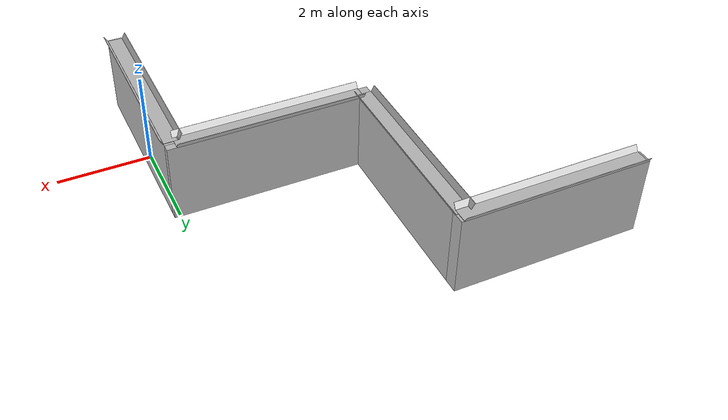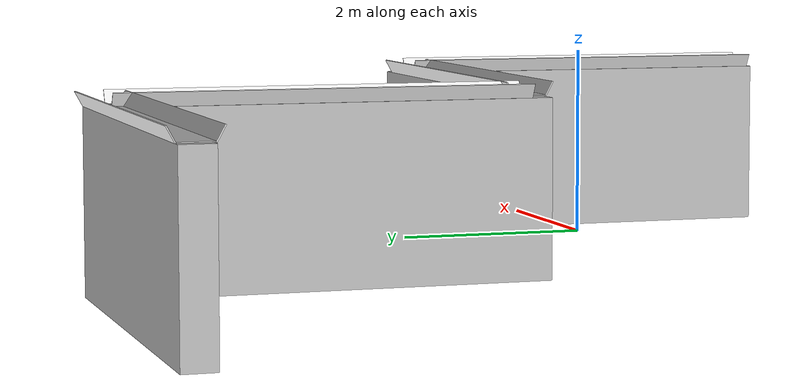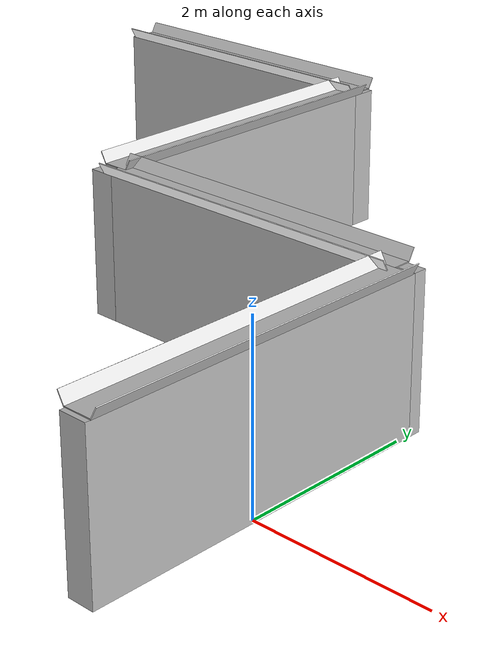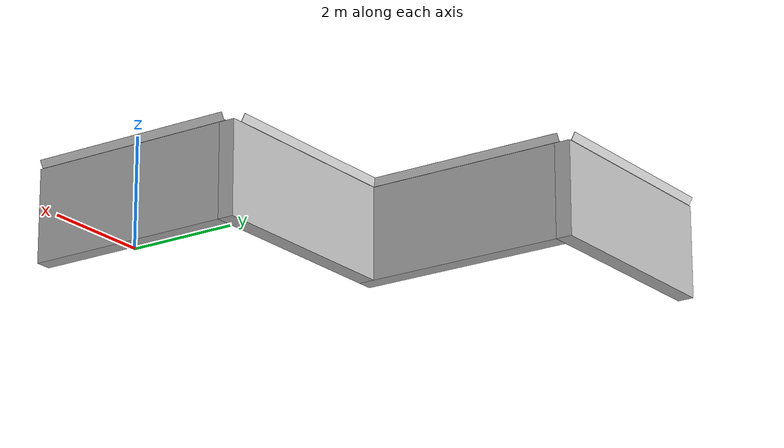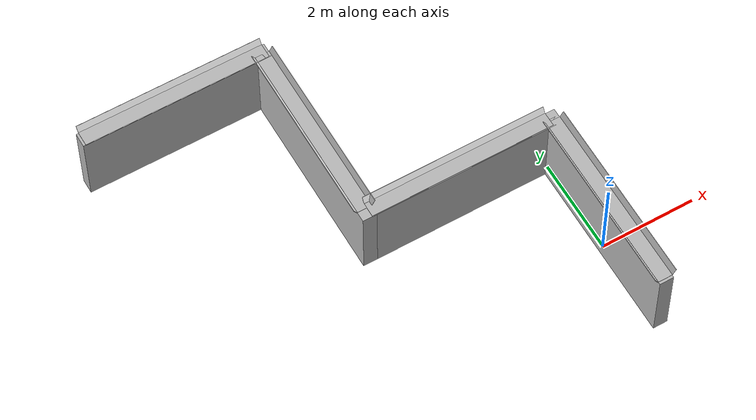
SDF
<?xml version="1.0" ?>
<sdf version="1.5">
  <model name="mbzirc_uav_wall">
    <static>true</static>
    <link name="link1">
	<pose frame=''>0.0 0 0.95 0 0.0 0</pose>
      <collision name="collision">
        <geometry>
          <box>
            <size>0.3 4.0 1.7</size>
          </box>
        </geometry>
      </collision>
      <visual name="visual">
        <cast_shadows>false</cast_shadows>
        <geometry>
          <box>
            <size>0.3 4.0 1.7</size>
          </box>
        </geometry>
        <material>
          <script>
            <uri>model://mbzirc_uav_wall/materials/scripts</uri>
            <uri>model://mbzirc_uav_wall/materials/textures</uri>
            <name>vrc/tennis_net</name>
          </script>
        </material>
      </visual>
    </link>
    <link name="link2">
	<pose frame=''>-1.85 2.0 0.95 0 0.0 1.57079</pose>
      <collision name="collision">
        <geometry>
          <box>
            <size>0.3 4.0 1.7</size>
          </box>
        </geometry>
      </collision>
      <visual name="visual">
        <cast_shadows>false</cast_shadows>
        <geometry>
          <box>
            <size>0.3 4.0 1.7</size>
          </box>
        </geometry>
        <material>
          <script>
            <uri>model://mbzirc_uav_wall/materials/scripts</uri>
            <uri>model://mbzirc_uav_wall/materials/textures</uri>
            <name>vrc/tennis_net</name>
          </script>
        </material>
      </visual>
    </link>
    <link name="link3">
	<pose frame=''>-4.0 3.85 0.95 0 0.0 0.0</pose>
      <collision name="collision">
        <geometry>
          <box>
            <size>0.3 4.0 1.7</size>
          </box>
        </geometry>
      </collision>
      <visual name="visual">
        <cast_shadows>false</cast_shadows>
        <geometry>
          <box>
            <size>0.3 4.0 1.7</size>
          </box>
        </geometry>
        <material>
          <script>
            <uri>model://mbzirc_uav_wall/materials/scripts</uri>
            <uri>model://mbzirc_uav_wall/materials/textures</uri>
            <name>vrc/tennis_net</name>
          </script>
        </material>
      </visual>
    </link>
    <link name="link4">
	<pose frame=''>-5.85 6.0 0.95 0 0.0 1.57079</pose>
      <collision name="collision">
        <geometry>
          <box>
            <size>0.3 4.0 1.7</size>
          </box>
        </geometry>
      </collision>
      <visual name="visual">
        <cast_shadows>false</cast_shadows>
        <geometry>
          <box>
            <size>0.3 4.0 1.7</size>
          </box>
        </geometry>
        <material>
          <script>
            <uri>model://mbzirc_uav_wall/materials/scripts</uri>
            <uri>model://mbzirc_uav_wall/materials/textures</uri>
            <name>vrc/tennis_net</name>
          </script>
        </material>
      </visual>
    </link>

	<include>
      <uri>model://mbzirc_uav_channel_2</uri>
      <pose>-0.15 -2.0 1.76 0 0 0</pose>
      <name>mbzirc_uav_channel_1</name>
    </include>

	<include>
      <uri>model://mbzirc_uav_channel_2</uri>
      <pose>-0.0 1.85 1.76 0 0 1.57079</pose>
      <name>mbzirc_uav_channel_2</name>
    </include>

	<include>
      <uri>model://mbzirc_uav_channel_2</uri>
      <pose>-4.15 2.0 1.76 0 0 0</pose>
      <name>mbzirc_uav_channel_3</name>
    </include>

	<include>
      <uri>model://mbzirc_uav_channel_2</uri>
      <pose>-3.85 5.85 1.76 0 0 1.57079</pose>
      <name>mbzirc_uav_channel_4</name>
    </include>

  </model>
</sdf>

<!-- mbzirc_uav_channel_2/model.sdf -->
<sdf version="1.5">
  <model name="mbzirc_uav_channel_2">
    <static>true</static>
    <link name="link1">
	<pose frame=''>0.15 2.0 0.05 0 0.0 0</pose>
      <collision name="collision">
        <geometry>
          <box>
            <size>0.3 3.9 0.01</size>
          </box>
        </geometry>
      </collision>
      <visual name="visual">
        <cast_shadows>false</cast_shadows>
        <geometry>
          <box>
            <size>0.3 3.9 0.01</size>
          </box>
        </geometry>
        <material>
          <script>
            <uri>model://mbzirc_uav_channel_2/materials/scripts</uri>
            <uri>model://mbzirc_uav_channel_2/materials/textures</uri>
            <name>vrc/mesh</name>
          </script>
        </material>
      </visual>
    </link>
    <link name="link2">
	<pose frame=''>-0.04 2.0 0.11 0.0 -0.5 0.0</pose>
      <collision name="collision">
        <geometry>
          <box>
            <size>0.01 3.9 0.15</size>
          </box>
        </geometry>
      </collision>
      <visual name="visual">
        <cast_shadows>false</cast_shadows>
        <geometry>
          <box>
            <size>0.01 3.9 0.15</size>
          </box>
        </geometry>
        <material>
          <script>
            <name>Gazebo/White</name>
            <uri>file://media/materials/scripts/gazebo.material</uri>
          </script>
        </material>
      </visual>
    </link>
    <link name="link3">
	<pose frame=''>0.34 2.0 0.11 0.0 0.5 0.0</pose>
      <collision name="collision">
        <geometry>
          <box>
            <size>0.01 3.9 0.15</size>
          </box>
        </geometry>
      </collision>
      <visual name="visual">
        <cast_shadows>false</cast_shadows>
        <geometry>
          <box>
            <size>0.01 3.9 0.15</size>
          </box>
        </geometry>
        <material>
          <script>
            <name>Gazebo/White</name>
            <uri>file://media/materials/scripts/gazebo.material</uri>
          </script>
        </material>
      </visual>
    </link>
  </model>
</sdf>
